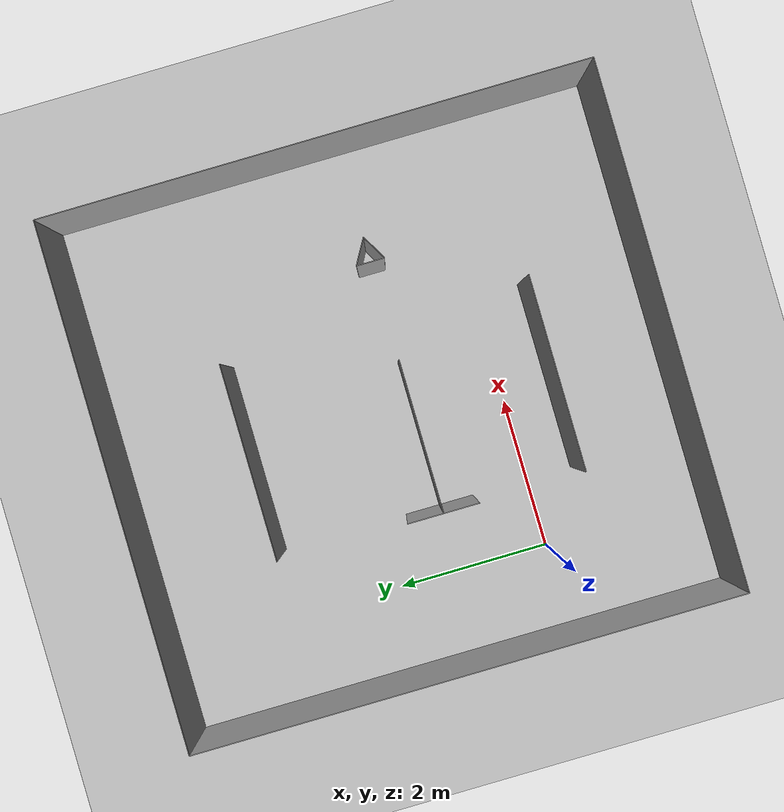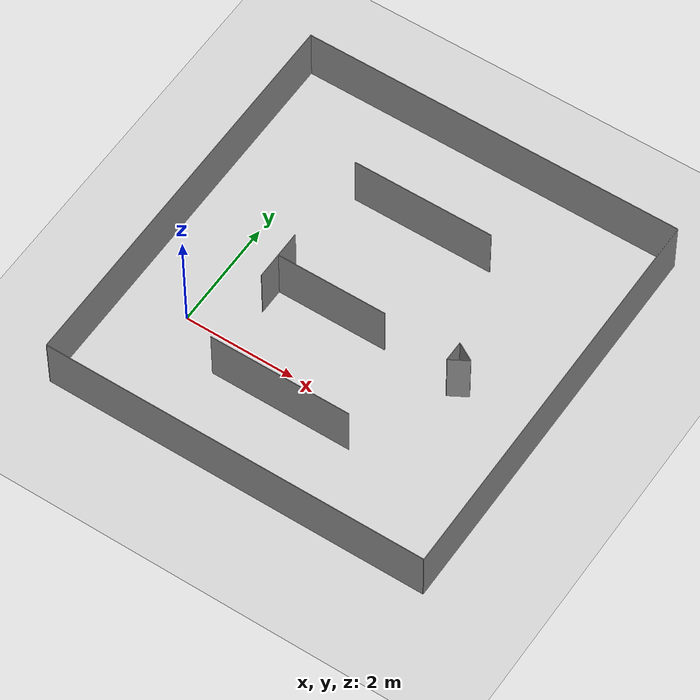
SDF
<sdf version="1.4">
 <world name="default">
  <light name="sun" type="directional">
   <pose>0 0 10 0 -0 0</pose>
   <diffuse>0.8 0.8 0.8 1</diffuse>
   <specular>0.2 0.2 0.2 1</specular>
   <attenuation>
    <range>1000</range>
    <constant>0.9</constant>
    <linear>0.01</linear>
    <quadratic>0.001</quadratic>
   </attenuation>
   <direction>-0.5 0.1 -0.9</direction>
  </light>
  <model name="ground_plane">
   <static>1</static>
   <link name="link">
    <collision name="collision">
     <geometry><plane><normal>0 0 1</normal><size>100 100</size></plane></geometry>
     <surface><friction><ode><mu>100</mu><mu2>50</mu2></ode></friction></surface>
    </collision>
    <visual name="visual">
     <cast_shadows>0</cast_shadows>
     <geometry><plane><normal>0 0 1</normal><size>100 100</size></plane></geometry>
     <material>
      <script><uri>file://media/materials/scripts/gazebo.material</uri><name>Gazebo/Grey</name></script>
     </material>
    </visual>
    <velocity_decay><linear>0</linear><angular>0</angular></velocity_decay>
   </link>
  </model>
  <physics type="ode">
   <max_step_size>0.001</max_step_size>
   <real_time_factor>1</real_time_factor>
   <real_time_update_rate>1000</real_time_update_rate>
   <gravity>0 0 -9.8</gravity>
  </physics>
  <scene><ambient>0.4 0.4 0.4 1</ambient><background>0.7 0.7 0.7 1</background><shadows>1</shadows></scene>
  <spherical_coordinates>
   <surface_model>EARTH_WGS84</surface_model>
   <latitude_deg>0</latitude_deg>
   <longitude_deg>0</longitude_deg>
   <elevation>0</elevation>
   <heading_deg>0</heading_deg>
  </spherical_coordinates>
  <model name="north_wall">
   <pose>5.795 1.465 0.5 0 -0 0</pose>
   <link name="link">
    <inertial>
     <mass>1</mass>
     <inertia><ixx>1</ixx><ixy>0</ixy><ixz>0</ixz><iyy>1</iyy><iyz>0</iyz><izz>1</izz></inertia>
    </inertial>
    <collision name="collision"><geometry><box><size>0.01 7.19 1</size></box></geometry></collision>
    <visual name="visual">
     <geometry><box><size>0.01 7.19 1</size></box></geometry>
     <material>
      <script><uri>file://media/materials/scripts/gazebo.material</uri><name>Gazebo/Grey</name></script>
     </material>
    </visual>
    <velocity_decay><linear>0</linear><angular>0</angular></velocity_decay>
   </link>
   <static>1</static>
  </model>
  <model name="south_wall">
   <pose>-1.085 1.465 0.5 0 -0 0</pose>
   <link name="link">
    <inertial>
     <mass>1</mass>
     <inertia><ixx>1</ixx><ixy>0</ixy><ixz>0</ixz><iyy>1</iyy><iyz>0</iyz><izz>1</izz></inertia>
    </inertial>
    <collision name="collision"><geometry><box><size>0.01 7.19 1</size></box></geometry></collision>
    <visual name="visual">
     <geometry><box><size>0.01 7.19 1</size></box></geometry>
     <material>
      <script><uri>file://media/materials/scripts/gazebo.material</uri><name>Gazebo/Grey</name></script>
     </material>
    </visual>
    <velocity_decay><linear>0</linear><angular>0</angular></velocity_decay>
   </link>
   <static>1</static>
  </model>
  <model name="east_wall">
   <pose>2.35 -2.125 0.5 0 -0 0</pose>
   <link name="link">
    <inertial>
     <mass>1</mass>
     <inertia><ixx>1</ixx><ixy>0</ixy><ixz>0</ixz><iyy>1</iyy><iyz>0</iyz><izz>1</izz></inertia>
    </inertial>
    <collision name="collision"><geometry><box><size>6.88 0.01 1</size></box></geometry></collision>
    <visual name="visual">
     <geometry><box><size>6.88 0.01 1</size></box></geometry>
     <material>
      <script><uri>file://media/materials/scripts/gazebo.material</uri><name>Gazebo/Grey</name></script>
     </material>
    </visual>
    <velocity_decay><linear>0</linear><angular>0</angular></velocity_decay>
   </link>
   <static>1</static>
  </model>
  <model name="west_wall">
   <pose>2.35 5.065 0.5 0 -0 0</pose>
   <link name="link">
    <inertial>
     <mass>1</mass>
     <inertia><ixx>1</ixx><ixy>0</ixy><ixz>0</ixz><iyy>1</iyy><iyz>0</iyz><izz>1</izz></inertia>
    </inertial>
    <collision name="collision"><geometry><box><size>6.88 0.01 1</size></box></geometry></collision>
    <visual name="visual">
     <geometry><box><size>6.88 0.01 1</size></box></geometry>
     <material>
      <script><uri>file://media/materials/scripts/gazebo.material</uri><name>Gazebo/Grey</name></script>
     </material>
    </visual>
    <velocity_decay><linear>0</linear><angular>0</angular></velocity_decay>
   </link>
   <static>1</static>
  </model>
  <model name="divider_1">
   <pose>2.18 3.36 0.5 0 -0 0</pose>
   <link name="link">
    <inertial>
     <mass>1</mass>
     <inertia><ixx>1</ixx><ixy>0</ixy><ixz>0</ixz><iyy>1</iyy><iyz>0</iyz><izz>1</izz></inertia>
    </inertial>
    <collision name="collision"><geometry><box><size>2.54 0.01 1</size></box></geometry></collision>
    <visual name="visual">
     <geometry><box><size>2.54 0.01 1</size></box></geometry>
     <material>
      <script><uri>file://media/materials/scripts/gazebo.material</uri><name>Gazebo/Grey</name></script>
     </material>
    </visual>
    <velocity_decay><linear>0</linear><angular>0</angular></velocity_decay>
   </link>
   <static>1</static>
  </model>
  <model name="divider_2">
   <pose>1.9 1.22 0.5 0 -0 0</pose>
   <link name="link">
    <inertial>
     <mass>1</mass>
     <inertia><ixx>1</ixx><ixy>0</ixy><ixz>0</ixz><iyy>1</iyy><iyz>0</iyz><izz>1</izz></inertia>
    </inertial>
    <collision name="collision"><geometry><box><size>1.98 0.01 1</size></box></geometry></collision>
    <visual name="visual">
     <geometry><box><size>1.98 0.01 1</size></box></geometry>
     <material>
      <script><uri>file://media/materials/scripts/gazebo.material</uri><name>Gazebo/Grey</name></script>
     </material>
    </visual>
    <velocity_decay><linear>0</linear><angular>0</angular></velocity_decay>
   </link>
   <static>1</static>
  </model>
  <model name="divider_3">
   <pose>0.91 1.22 0.5 0 -0 0</pose>
   <link name="link">
    <inertial>
     <mass>1</mass>
     <inertia><ixx>1</ixx><ixy>0</ixy><ixz>0</ixz><iyy>1</iyy><iyz>0</iyz><izz>1</izz></inertia>
    </inertial>
    <collision name="collision"><geometry><box><size>0.01 0.93 1</size></box></geometry></collision>
    <visual name="visual">
     <geometry><box><size>0.01 0.93 1</size></box></geometry>
     <material>
      <script><uri>file://media/materials/scripts/gazebo.material</uri><name>Gazebo/Grey</name></script>
     </material>
    </visual>
    <velocity_decay><linear>0</linear><angular>0</angular></velocity_decay>
   </link>
   <static>1</static>
  </model>
  <model name="divider_4">
   <pose>2.18 -0.61 0.5 0 0 0</pose>
   <link name="link">
    <inertial>
     <mass>1</mass>
     <inertia><ixx>1</ixx><ixy>0</ixy><ixz>0</ixz><iyy>1</iyy><iyz>0</iyz><izz>1</izz></inertia>
    </inertial>
    <collision name="collision"><geometry><box><size>2.54 0.01 1</size></box></geometry></collision>
    <visual name="visual">
     <geometry><box><size>2.54 0.01 1</size></box></geometry>
     <material>
      <script><uri>file://media/materials/scripts/gazebo.material</uri><name>Gazebo/Grey</name></script>
     </material>
    </visual>
    <velocity_decay><linear>0</linear><angular>0</angular></velocity_decay>
   </link>
   <static>1</static>
  </model>
  <model name="divider_5">
   <pose>4.3 1.31 0.5 0 0 -0.5236</pose>
   <link name="link">
    <inertial>
     <mass>1</mass>
     <inertia><ixx>1</ixx><ixy>0</ixy><ixz>0</ixz><iyy>1</iyy><iyz>0</iyz><izz>1</izz></inertia>
    </inertial>
    <collision name="collision"><geometry><box><size>0.36 0.01 1</size></box></geometry></collision>
    <visual name="visual">
     <geometry><box><size>0.36 0.01 1</size></box></geometry>
     <material>
      <script><uri>file://media/materials/scripts/gazebo.material</uri><name>Gazebo/Grey</name></script>
     </material>
    </visual>
    <velocity_decay><linear>0</linear><angular>0</angular></velocity_decay>
   </link>
   <static>1</static>
  </model>
  <model name="divider_6">
   <pose>4.14 1.22 0.5 0 -0 0</pose>
   <link name="link">
    <inertial>
     <mass>1</mass>
     <inertia><ixx>1</ixx><ixy>0</ixy><ixz>0</ixz><iyy>1</iyy><iyz>0</iyz><izz>1</izz></inertia>
    </inertial>
    <collision name="collision"><geometry><box><size>0.01 0.36 1</size></box></geometry></collision>
    <visual name="visual">
     <geometry><box><size>0.01 0.36 1</size></box></geometry>
     <material>
      <script><uri>file://media/materials/scripts/gazebo.material</uri><name>Gazebo/Grey</name></script>
     </material>
    </visual>
    <velocity_decay><linear>0</linear><angular>0</angular></velocity_decay>
   </link>
   <static>1</static>
  </model>
  <model name="divider_7">
   <pose>4.3 1.13 0.5 0 -0 0.5236</pose>
   <link name="link">
    <inertial>
     <mass>1</mass>
     <inertia><ixx>1</ixx><ixy>0</ixy><ixz>0</ixz><iyy>1</iyy><iyz>0</iyz><izz>1</izz></inertia>
    </inertial>
    <collision name="collision"><geometry><box><size>0.36 0.01 1</size></box></geometry></collision>
    <visual name="visual">
     <geometry><box><size>0.36 0.01 1</size></box></geometry>
     <material>
      <script><uri>file://media/materials/scripts/gazebo.material</uri><name>Gazebo/Grey</name></script>
     </material>
    </visual>
    <velocity_decay><linear>0</linear><angular>0</angular></velocity_decay>
   </link>
   <static>1</static>
  </model>
 </world>
</sdf>
